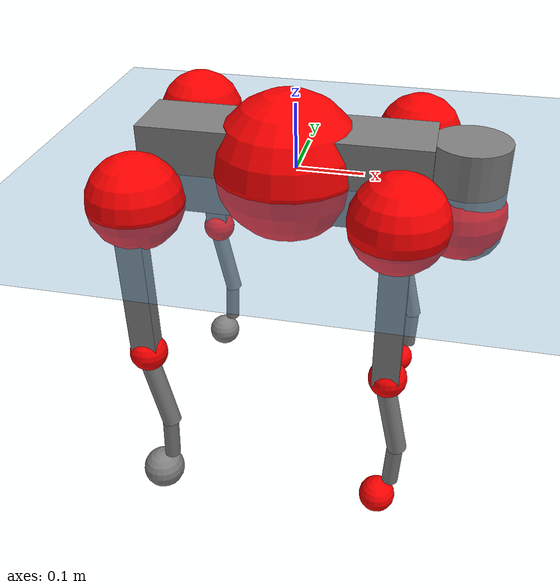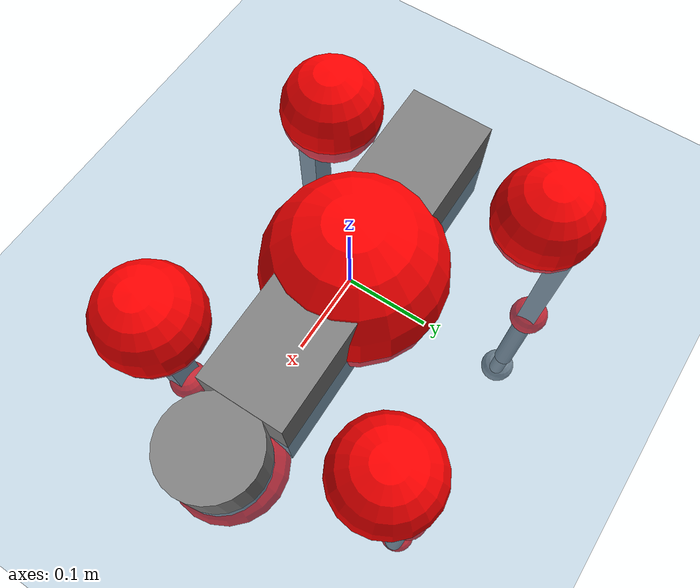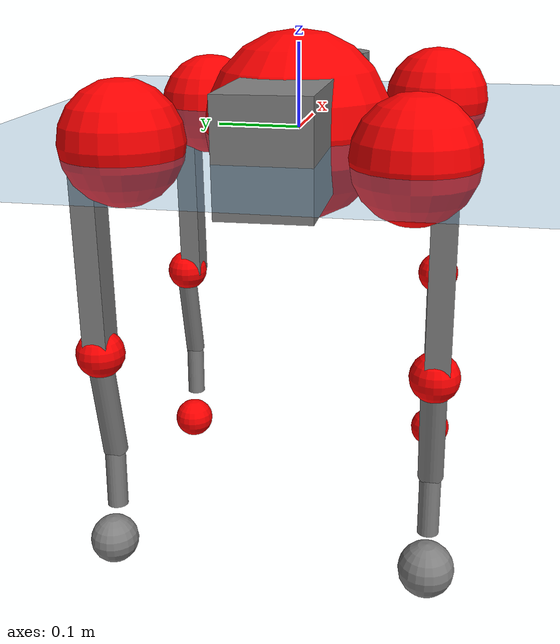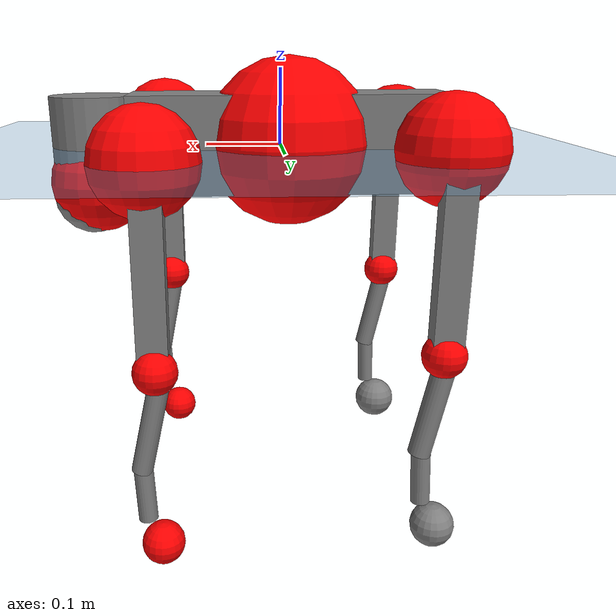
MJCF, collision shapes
<mujoco model="go2">
  <compiler angle="radian" assetdir="assets" balanceinertia="true" inertiafromgeom="false"/>

  <option timestep="0.005" density="1.2" viscosity="2e-05"/>

  <size nkey="1"/>

  <visual>
    <quality shadowsize="8192"/>
    <map shadowclip="0.5"/>
  </visual>

  <default>
    <default class="/">
      <geom contype="0" conaffinity="0" group="1" solref="-1000 -80"/>
      <site size="0.01 0.005 0.005" group="5"/>
      <general forcelimited="true" biastype="affine" gainprm="20" biasprm="0 -20 -0.5"/>
      <default class="go2">
        <joint armature="0.01" damping="0.01" frictionloss="0.2"/>
        <geom condim="1" margin="0.001"/>
        <default class="visual">
          <geom type="mesh" group="2"/>
        </default>
        <default class="collision">
          <geom group="3"/>
          <default class="foot">
            <geom size="0.022 0 0" condim="6" priority="1" friction="0.8 0.02 0.01" solimp="0.015 1 0.022"/>
          </default>
        </default>
        <default class="reward_collision_sphere">
          <geom group="5" rgba="1 0 0 1"/>
        </default>
      </default>
    </default>
  </default>

  <asset>
    <texture type="skybox" colorspace="auto" name="//unnamed_texture_0" builtin="gradient" rgb1="0.95 0.95 0.95" rgb2="0.95 0.95 0.95" width="100" height="600"/>
    <texture type="2d" colorspace="auto" name="texplane" builtin="checker" rgb1="0.345 0.575 0.748" rgb2="0.345 0.575 0.748" markrgb="1 1 1" width="512" height="512"/>
    <material name="MatPlane" class="/" texture="texplane" texuniform="true" texrepeat="2 2" specular="0.9"/>
    <material name="metal" class="/" rgba="0.9 0.95 0.95 1"/>
    <material name="black" class="/" rgba="0 0 0 1"/>
    <material name="white" class="/"/>
    <material name="gray" class="/" rgba="0.671705 0.692426 0.77427 1"/>
    <mesh name="base_0" class="/" file="base_0.obj"/>
    <mesh name="base_1" class="/" file="base_1.obj"/>
    <mesh name="base_2" class="/" file="base_2.obj"/>
    <mesh name="base_3" class="/" file="base_3.obj"/>
    <mesh name="base_4" class="/" file="base_4.obj"/>
    <mesh name="hip_0" class="/" file="hip_0.obj"/>
    <mesh name="hip_1" class="/" file="hip_1.obj"/>
    <mesh name="thigh_0" class="/" file="thigh_0.obj"/>
    <mesh name="thigh_1" class="/" file="thigh_1.obj"/>
    <mesh name="thigh_mirror_0" class="/" file="thigh_mirror_0.obj"/>
    <mesh name="thigh_mirror_1" class="/" file="thigh_mirror_1.obj"/>
    <mesh name="calf_0" class="/" file="calf_0.obj"/>
    <mesh name="calf_1" class="/" file="calf_1.obj"/>
    <mesh name="calf_mirror_0" class="/" file="calf_mirror_0.obj"/>
    <mesh name="calf_mirror_1" class="/" file="calf_mirror_1.obj"/>
    <mesh name="foot" class="/" file="foot.obj"/>
  </asset>

  <worldbody>
    <geom name="floor" class="/" size="100 100 0.125" type="plane" group="0" material="MatPlane"/>
    <light name="toplight_shadow" class="/" pos="0 0 5" dir="0.0990148 0.0990148 -0.990148" type="directional" ambient="0.04 0.04 0.04" diffuse="0.55 0.55 0.55" specular="0.12 0.12 0.12"/>
    <light name="toplight_fill" class="/" pos="0 0 5" dir="0.0990148 0.0990148 -0.990148" type="directional" castshadow="false" ambient="0.04 0.04 0.04" diffuse="0.3 0.3 0.3" specular="0.08 0.08 0.08"/>
    <body name="trunk" childclass="go2" pos="-0.0115576 -0.0015099 0.00399737" quat="0.999987 -0.00340214 0.00188778 0.00323128">
      <inertial pos="0.0302274 -0.00363256 -0.00632996" quat="-0.000502411 0.713445 -0.00170546 0.700709" mass="11.0707" diaginertia="0.0669615 0.39315 0.0454787"/>
      <joint name="//unnamed_joint_0" type="free" armature="0" damping="0" frictionloss="0"/>
      <geom name="//unnamed_geom_1" class="visual" material="black" mesh="base_0"/>
      <geom name="//unnamed_geom_2" class="visual" material="black" mesh="base_1"/>
      <geom name="//unnamed_geom_3" class="visual" material="black" mesh="base_2"/>
      <geom name="//unnamed_geom_4" class="visual" material="white" mesh="base_3"/>
      <geom name="//unnamed_geom_5" class="visual" material="gray" mesh="base_4"/>
      <geom name="trunk_1" class="collision" size="0.212945 0.0529248 0.0645286" type="box"/>
      <geom name="trunk_2" class="collision" size="0.0566041 0.0509437" pos="0.261572 0 0.0114875" type="cylinder"/>
      <geom name="trunk_3" class="collision" size="0.0532078" pos="0.268915 0 -0.0689249"/>
      <geom name="//unnamed_geom_9" class="reward_collision_sphere" size="0.113208"/>
      <geom name="//unnamed_geom_10" class="reward_collision_sphere" size="0.0679249" pos="0.256983 0 -0.0516937"/>
      <site name="imu" pos="-0.0303516 -0.0244432 0.000244632" size="0.0113208"/>
      <camera name="track" pos="0 -2.6594 0" quat="0.707107 0.707107 0 0" mode="trackcom"/>
      <camera name="ego_camera" pos="0.286353 0 0.0516937" quat="-0.5 -0.5 0.5 0.5"/>
      <body name="FL_hip" pos="0.180031 0.0633542 -0.00338872" quat="0.999998 0.000461906 -0.00178724 -0.00046215">
        <inertial pos="-0.005348 0.00973479 -0.00102918" quat="0.49715 0.494801 0.509157 0.498771" mass="1.02567" diaginertia="0.000488492 0.00232047 0.000956893"/>
        <joint name="FL_hip_joint" pos="0 0 0" axis="0.998392 -0.0313758 0.0472177" stiffness="0.0126409" range="-1.26874 1.02453" armature="0.0120242" damping="0" frictionloss="0.232871"/>
        <geom name="//unnamed_geom_11" class="visual" material="metal" mesh="hip_0"/>
        <geom name="//unnamed_geom_12" class="visual" material="gray" mesh="hip_1"/>
        <geom name="//unnamed_geom_13" class="collision" size="0.0520757 0.0226416" pos="0 0.106376 0" quat="0.707107 0.707107 0 0" type="cylinder"/>
        <geom name="//unnamed_geom_14" class="reward_collision_sphere" size="0.0679249" pos="0 0.0930789 0"/>
        <body name="FL_thigh" pos="-0.00423567 0.127852 -0.00516799" quat="0.99999 -0.000915393 -0.00247288 -0.00352539">
          <inertial pos="-0.0103629 -0.0236532 -0.0276193" quat="0.829256 0.08602 -0.0204868 0.551829" mass="1.78334" diaginertia="0.00399618 0.0269321 0.00162803"/>
          <joint name="FL_thigh_joint" pos="0 0 0" axis="0.00297342 0.999923 0.0120762" stiffness="0.0593912" range="-1.6445 3.51549" armature="0.0133042" damping="0.0102007" frictionloss="0.253225"/>
          <geom name="//unnamed_geom_15" class="visual" material="metal" mesh="thigh_0"/>
          <geom name="//unnamed_geom_16" class="visual" material="gray" mesh="thigh_1"/>
          <geom name="//unnamed_geom_17" class="collision" size="0.120567 0.013868 0.0192454" pos="0 0 -0.122342" quat="0.707107 0 0.707107 0" type="box"/>
          <body name="FL_calf" pos="-0.00242988 0.010048 -0.241214" quat="0.999996 0.00143638 -0.000964434 0.00233851">
            <inertial pos="0.0141071 -0.0020313 -0.168842" quat="0.70831 -0.0126753 -0.00619721 0.705761" mass="0.341556" diaginertia="0.000881933 0.00478724 8.85377e-05"/>
            <joint name="FL_calf_joint" pos="0 0 0" axis="0.00914874 0.999934 -0.00696111" range="-2.52428 -0.804437" armature="0.00900355" damping="0.050374" frictionloss="0.174061"/>
            <geom name="//unnamed_geom_18" class="visual" material="gray" mesh="calf_0"/>
            <geom name="//unnamed_geom_19" class="visual" material="black" mesh="calf_1"/>
            <geom name="FL_calf0" class="collision" size="0.013585 0.0679249" pos="0.00734238 0 -0.0689249" quat="0.994493 0 -0.104807 0" type="cylinder"/>
            <geom name="//unnamed_geom_21" class="collision" size="0.0124529 0.0367926" pos="0.018356 0 -0.170015" quat="0.999688 0 0.0249974 0" type="cylinder"/>
            <geom name="//unnamed_geom_22" class="visual" pos="0 0 -0.244683" quat="1 0 0 0" material="black" mesh="foot"/>
            <geom name="FL_foot" class="foot" size="0.0175828" pos="-0.0018356 0 -0.244683"/>
            <geom name="//unnamed_geom_24" class="reward_collision_sphere" size="0.028302"/>
            <geom name="//unnamed_geom_25" class="reward_collision_sphere" size="0.028302" pos="-0.0018356 0 -0.244683"/>
            <site name="FL_foot" class="foot" pos="-0.0018356 0 -0.244683" size="0.0113208"/>
          </body>
        </body>
      </body>
      <body name="FR_hip" pos="0.178674 -0.0637011 0.0102829" quat="0.999993 0.0035015 0.000448608 -0.00157596">
        <inertial pos="-0.00949457 0.00668659 -0.00126948" quat="0.503274 0.533695 0.467946 0.49286" mass="0.998155" diaginertia="0.000668928 0.00262531 0.00109902"/>
        <joint name="FR_hip_joint" pos="0 0 0" axis="0.999734 0.0221006 -0.00657749" stiffness="0.00606743" range="-1.09348 1.04692" armature="0.0104949" damping="0.0182498" frictionloss="0.325341"/>
        <geom name="//unnamed_geom_26" class="visual" pos="0 1.57636e-09 6.76135e-08" quat="4.63268e-05 1 0 0" material="metal" mesh="hip_0"/>
        <geom name="//unnamed_geom_27" class="visual" pos="0 2.55547e-09 -1.67234e-07" quat="4.63268e-05 1 0 0" material="gray" mesh="hip_1"/>
        <geom name="//unnamed_geom_28" class="collision" size="0.0520757 0.0226416" pos="0 -0.106376 0" quat="0.707107 0.707107 0 0" type="cylinder"/>
        <geom name="//unnamed_geom_29" class="reward_collision_sphere" size="0.0679249" pos="0 -0.0930789 0"/>
        <body name="FR_thigh" pos="0.00114571 -0.115686 -0.00379851" quat="0.999999 0.000875336 0.000315166 -0.000676193">
          <inertial pos="-0.00843884 0.0371899 -0.0387428" quat="0.533394 -0.0168113 0.0642846 0.843253" mass="1.63052" diaginertia="0.00401071 0.0261995 0.00165263"/>
          <joint name="FR_thigh_joint" pos="0 0 0" axis="-0.00258035 -0.999984 -0.0049361" stiffness="0.0258045" range="-3.50839 1.40748" armature="0.0115629" damping="0.0158773" frictionloss="0.185665"/>
          <geom name="//unnamed_geom_30" class="visual" material="metal" mesh="thigh_mirror_0"/>
          <geom name="//unnamed_geom_31" class="visual" material="gray" mesh="thigh_mirror_1"/>
          <geom name="//unnamed_geom_32" class="collision" size="0.120567 0.013868 0.0192454" pos="0 0 -0.122342" quat="0.707107 0 0.707107 0" type="box"/>
          <body name="FR_calf" pos="0.00192294 0.00798014 -0.242556" quat="1 7.34053e-05 6.88524e-05 6.89704e-06">
            <inertial pos="0.00490166 0.00245839 -0.160673" quat="0.71019 -0.00769365 -0.0446031 0.702553" mass="0.340512" diaginertia="0.000965791 0.00602053 0.000114949"/>
            <joint name="FR_calf_joint" pos="0 0 0" axis="-0.00547021 -0.998605 -0.052515" stiffness="0.0457146" range="0.871914 2.586" armature="0.0125597" damping="0" frictionloss="0.261294"/>
            <geom name="//unnamed_geom_33" class="visual" material="gray" mesh="calf_mirror_0"/>
            <geom name="//unnamed_geom_34" class="visual" material="black" mesh="calf_mirror_1"/>
            <geom name="FR_calf0" class="collision" size="0.0147171 0.0679249" pos="0.00917798 0 -0.0689249" quat="0.995004 0 -0.0998334 0" type="cylinder"/>
            <geom name="//unnamed_geom_36" class="collision" size="0.0124529 0.0367926" pos="0.018356 0 -0.170015" quat="0.999688 0 0.0249974 0" type="cylinder"/>
            <geom name="//unnamed_geom_37" class="visual" pos="0 0 -0.244683" quat="1 0 0 0" material="black" mesh="foot"/>
            <geom name="FR_foot" class="foot" size="0.0267014" pos="-0.0018356 0 -0.244683"/>
            <geom name="//unnamed_geom_39" class="reward_collision_sphere" size="0.028302"/>
            <geom name="//unnamed_geom_40" class="reward_collision_sphere" size="0.028302" pos="-0.0018356 0 -0.244683"/>
            <site name="FR_foot" class="foot" pos="-0.0018356 0 -0.244683" size="0.0113208"/>
          </body>
        </body>
      </body>
      <body name="RL_hip" pos="-0.180773 0.0634604 0.00786202" quat="0.999999 -0.000125027 6.48276e-05 -0.00116861">
        <inertial pos="0.00209941 -0.00803337 0.00723283" quat="0.548623 0.505929 0.477064 0.464176" mass="0.851293" diaginertia="0.000581822 0.00240944 0.000838131"/>
        <joint name="RL_hip_joint" pos="0 0 0" axis="-0.99982 -0.0188185 -0.00256653" range="-1.06177 1.15551" armature="0.0156256" damping="0.0124438" frictionloss="0.119451"/>
        <geom name="//unnamed_geom_41" class="visual" pos="2.01194e-09 0 3.94388e-07" quat="4.63268e-05 0 1 0" material="metal" mesh="hip_0"/>
        <geom name="//unnamed_geom_42" class="visual" pos="3.2616e-09 0 3.49766e-07" quat="4.63268e-05 0 1 0" material="gray" mesh="hip_1"/>
        <geom name="//unnamed_geom_43" class="collision" size="0.0520757 0.0226416" pos="0 0.106376 0" quat="0.707107 0.707107 0 0" type="cylinder"/>
        <geom name="//unnamed_geom_44" class="reward_collision_sphere" size="0.0679249" pos="0 0.0930789 0"/>
        <body name="RL_thigh" pos="0.00126755 0.136092 -0.00930977" quat="1 -0.000307768 -0.000221699 9.84874e-05">
          <inertial pos="-0.00360071 -0.0303484 -0.03729" quat="0.826451 0.095613 -0.0159422 0.554601" mass="1.42383" diaginertia="0.0038931 0.0239498 0.00159502"/>
          <joint name="RL_thigh_joint" pos="0 0 0" axis="0.0138392 0.999602 -0.0245742" range="-0.495492 4.55115" armature="0.00740465" damping="0.0323569" frictionloss="0.220944"/>
          <geom name="//unnamed_geom_45" class="visual" material="metal" mesh="thigh_0"/>
          <geom name="//unnamed_geom_46" class="visual" material="gray" mesh="thigh_1"/>
          <geom name="//unnamed_geom_47" class="collision" size="0.120567 0.013868 0.0192454" pos="0 0 -0.122342" quat="0.707107 0 0.707107 0" type="box"/>
          <body name="RL_calf" pos="0.00108871 0.000949753 -0.234392" quat="1 6.49067e-05 -8.32829e-05 0.000142106">
            <inertial pos="0.00820158 -0.0119485 -0.160989" quat="0.720993 -0.0112554 -0.0170477 0.692642" mass="0.34045" diaginertia="0.00100173 0.00603893 0.000117986"/>
            <joint name="RL_calf_joint" pos="0 0 0" axis="-0.00285349 0.999993 0.00255101" stiffness="0.0585498" range="-2.71944 -0.912241" armature="0.00869467" damping="0.038022" frictionloss="0.103788"/>
            <geom name="//unnamed_geom_48" class="visual" material="gray" mesh="calf_0"/>
            <geom name="//unnamed_geom_49" class="visual" material="black" mesh="calf_1"/>
            <geom name="RL_calf0" class="collision" size="0.0147171 0.0679249" pos="0.00917798 0 -0.0689249" quat="0.995004 0 -0.0998334 0" type="cylinder"/>
            <geom name="//unnamed_geom_51" class="collision" size="0.0124529 0.0367926" pos="0.018356 0 -0.170015" quat="0.999688 0 0.0249974 0" type="cylinder"/>
            <geom name="//unnamed_geom_52" class="visual" pos="0 0 -0.244683" quat="1 0 0 0" material="black" mesh="foot"/>
            <geom name="RL_foot" class="foot" size="0.0290761" pos="-0.0018356 0 -0.244683"/>
            <geom name="//unnamed_geom_54" class="reward_collision_sphere" size="0.028302"/>
            <geom name="//unnamed_geom_55" class="reward_collision_sphere" size="0.028302" pos="-0.0018356 0 -0.244683"/>
            <site name="RL_foot" class="foot" pos="-0.0018356 0 -0.244683" size="0.0113208"/>
          </body>
        </body>
      </body>
      <body name="RR_hip" pos="-0.179805 -0.0572955 -0.000789988" quat="0.999986 0.00249739 -0.00447071 0.00120754">
        <inertial pos="-0.00596581 -0.00988486 0.0106896" quat="0.495468 0.475994 0.495636 0.531306" mass="0.985812" diaginertia="0.000567779 0.00244139 0.000951597"/>
        <joint name="RR_hip_joint" pos="0 0 0" axis="-0.998401 -0.0264578 -0.0499554" range="-1.0955 1.05291" armature="0.0137898" damping="0.00765854" frictionloss="0.225334"/>
        <geom name="//unnamed_geom_56" class="visual" pos="-1.99768e-09 1.57636e-09 3.26774e-07" quat="2.14617e-09 4.63268e-05 4.63268e-05 -1" material="metal" mesh="hip_0"/>
        <geom name="//unnamed_geom_57" class="visual" pos="-3.29687e-09 2.55547e-09 5.17e-07" quat="2.14617e-09 4.63268e-05 4.63268e-05 -1" material="gray" mesh="hip_1"/>
        <geom name="//unnamed_geom_58" class="collision" size="0.0520757 0.0226416" pos="0 -0.106376 0" quat="0.707107 0.707107 0 0" type="cylinder"/>
        <geom name="//unnamed_geom_59" class="reward_collision_sphere" size="0.0679249" pos="0 -0.0930789 0"/>
        <body name="RR_thigh" pos="0.0012934 -0.125391 0.0109181" quat="0.999999 -0.00107051 -0.000234785 0.000530476">
          <inertial pos="-0.00430042 0.0310143 -0.0376052" quat="0.550838 -0.0173057 0.0919913 0.829347" mass="1.84733" diaginertia="0.0038444 0.0222997 0.00176786"/>
          <joint name="RR_thigh_joint" pos="0 0 0" axis="0.000576266 -0.999999 0.000961346" range="-4.54061 0.345685" armature="0.0106897" damping="0.00556125" frictionloss="0.224823"/>
          <geom name="//unnamed_geom_60" class="visual" material="metal" mesh="thigh_mirror_0"/>
          <geom name="//unnamed_geom_61" class="visual" material="gray" mesh="thigh_mirror_1"/>
          <geom name="//unnamed_geom_62" class="collision" size="0.120567 0.013868 0.0192454" pos="0 0 -0.122342" quat="0.707107 0 0.707107 0" type="box"/>
          <body name="RR_calf" pos="0.000907209 0.002971 -0.248911" quat="1 -0.000489957 -0.000452698 0.000383976">
            <inertial pos="0.0128724 0.00171633 -0.163749" quat="0.707355 -0.0196771 -0.0165131 0.706392" mass="0.341353" diaginertia="0.000930764 0.00617668 9.4642e-05"/>
            <joint name="RR_calf_joint" pos="0 0 0" axis="-0.0310844 -0.998798 -0.0379025" range="0.890356 2.70119" armature="0.0121331" damping="0" frictionloss="0.24037"/>
            <geom name="//unnamed_geom_63" class="visual" material="gray" mesh="calf_mirror_0"/>
            <geom name="//unnamed_geom_64" class="visual" material="black" mesh="calf_mirror_1"/>
            <geom name="RR_calf0" class="collision" size="0.0147171 0.0679249" pos="0.00917798 0 -0.0689249" quat="0.995004 0 -0.0998334 0" type="cylinder"/>
            <geom name="//unnamed_geom_66" class="collision" size="0.0124529 0.0367926" pos="0.018356 0 -0.170015" quat="0.999688 0 0.0249974 0" type="cylinder"/>
            <geom name="//unnamed_geom_67" class="visual" pos="0 0 -0.244683" quat="1 0 0 0" material="black" mesh="foot"/>
            <geom name="RR_foot" class="foot" size="0.0330161" pos="-0.0018356 0 -0.244683"/>
            <geom name="//unnamed_geom_69" class="reward_collision_sphere" size="0.028302"/>
            <geom name="//unnamed_geom_70" class="reward_collision_sphere" size="0.028302" pos="-0.0018356 0 -0.244683"/>
            <site name="RR_foot" class="foot" pos="-0.0018356 0 -0.244683" size="0.0113208"/>
          </body>
        </body>
      </body>
    </body>
  </worldbody>

  <contact>
    <pair class="/" geom1="floor" geom2="FL_foot" name="//unnamed_contact_0"/>
    <pair class="/" geom1="floor" geom2="FR_foot" name="//unnamed_contact_1"/>
    <pair class="/" geom1="floor" geom2="RL_foot" name="//unnamed_contact_2"/>
    <pair class="/" geom1="floor" geom2="RR_foot" name="//unnamed_contact_3"/>
  </contact>

  <actuator>
    <general name="FL_hip" class="/" joint="FL_hip_joint" forcerange="-27.0818 27.0818" gainprm="19.6937" biasprm="0 -19.6937 -0.660315"/>
    <general name="FL_thigh" class="/" joint="FL_thigh_joint" forcerange="-31.572 31.572" gainprm="19.6937" biasprm="0 -19.6937 -0.660315"/>
    <general name="FL_calf" class="/" joint="FL_calf_joint" forcerange="-49.7396 49.7396" gainprm="19.6937" biasprm="0 -19.6937 -0.660315"/>
    <general name="FR_hip" class="/" joint="FR_hip_joint" forcerange="-25.213 25.213" gainprm="19.6937" biasprm="0 -19.6937 -0.660315"/>
    <general name="FR_thigh" class="/" joint="FR_thigh_joint" forcerange="-22.1956 22.1956" gainprm="19.6937" biasprm="0 -19.6937 -0.660315"/>
    <general name="FR_calf" class="/" joint="FR_calf_joint" forcerange="-46.9423 46.9423" gainprm="19.6937" biasprm="0 -19.6937 -0.660315"/>
    <general name="RL_hip" class="/" joint="RL_hip_joint" forcerange="-16.2162 16.2162" gainprm="19.6937" biasprm="0 -19.6937 -0.660315"/>
    <general name="RL_thigh" class="/" joint="RL_thigh_joint" forcerange="-31.2166 31.2166" gainprm="19.6937" biasprm="0 -19.6937 -0.660315"/>
    <general name="RL_calf" class="/" joint="RL_calf_joint" forcerange="-71.7675 71.7675" gainprm="19.6937" biasprm="0 -19.6937 -0.660315"/>
    <general name="RR_hip" class="/" joint="RR_hip_joint" forcerange="-33.2369 33.2369" gainprm="19.6937" biasprm="0 -19.6937 -0.660315"/>
    <general name="RR_thigh" class="/" joint="RR_thigh_joint" forcerange="-16.654 16.654" gainprm="19.6937" biasprm="0 -19.6937 -0.660315"/>
    <general name="RR_calf" class="/" joint="RR_calf_joint" forcerange="-53.2628 53.2628" gainprm="19.6937" biasprm="0 -19.6937 -0.660315"/>
  </actuator>

  <sensor>
    <gyro site="imu" name="imu_angular_velocity"/>
    <velocimeter site="imu" name="imu_linear_velocity"/>
    <framelinvel objtype="site" objname="FL_foot" name="FL_foot_global_linear_velocity"/>
    <framelinvel objtype="site" objname="FR_foot" name="FR_foot_global_linear_velocity"/>
    <framelinvel objtype="site" objname="RL_foot" name="RL_foot_global_linear_velocity"/>
    <framelinvel objtype="site" objname="RR_foot" name="RR_foot_global_linear_velocity"/>
  </sensor>

  <keyframe>
    <key name="home" qpos="0 0 0.325 1 0 0 0 0.1 0.8 -1.5 -0.1 -0.8 1.5 -0.1 0.8 -1.5 0.1 -0.8 1.5"/>
  </keyframe>
</mujoco>
